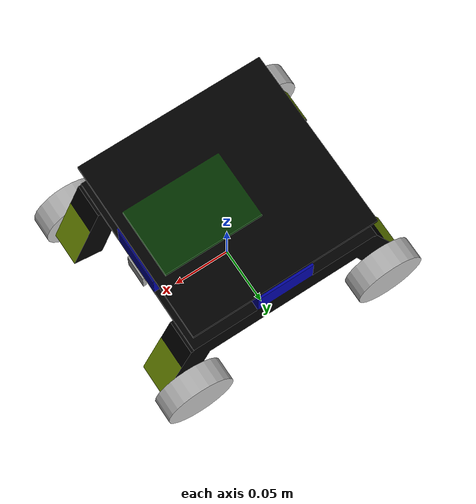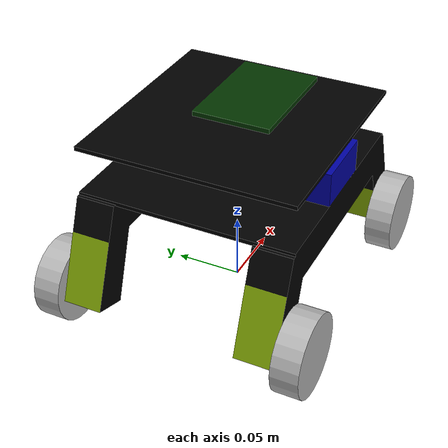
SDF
<?xml version='1.0'?>
<sdf version='1.4'>
  <model name="robob">
        <static>false</static>
   <link name="chassis">
        <pose>0 0 0.01 0 0 0</pose>
        <collision name="collision">
	  <geometry>
	    <mesh>
		  <uri>model://robob/robob_platform.dae</uri>
            </mesh>
          </geometry>
        </collision>
        <visual name="visual">
            <geometry>
                <mesh>
		  <uri>model://robob/robob_platform.dae</uri>
                </mesh>
            </geometry>
        </visual>
    </link>

    <link name="left_front_wheel">
        <pose>0.09 0.09 0.03 0 1.5707 1.5707</pose>
        <collision name="collision">
          <geometry>
            <cylinder>
              <radius>.03</radius>
              <length>.02</length>
            </cylinder>
          </geometry>
        </collision>
        <visual name="visual">
          <geometry>
            <cylinder>
              <radius>.03</radius>
              <length>.02</length>
            </cylinder>
          </geometry>
        </visual>
      </link>

   <link name="right_front_wheel">
        <pose>0.09 -0.09 0.03 0 1.5707 1.5707</pose>
        <collision name="collision">
          <geometry>
            <cylinder>
              <radius>.03</radius>
              <length>.02</length>
            </cylinder>
          </geometry>
        </collision>
        <visual name="visual">
          <geometry>
            <cylinder>
              <radius>.03</radius>
              <length>.02</length>
            </cylinder>
          </geometry>
        </visual>
      </link>

   <link name="right_back_wheel">
        <pose>-0.09 -0.09 0.03 0 1.5707 1.5707</pose>
        <collision name="collision">
          <geometry>
            <cylinder>
              <radius>.03</radius>
              <length>.02</length>
            </cylinder>
          </geometry>
        </collision>
        <visual name="visual">
          <geometry>
            <cylinder>
              <radius>.03</radius>
              <length>.02</length>
            </cylinder>
          </geometry>
        </visual>
      </link>

    <link name="left_back_wheel">
        <pose>-0.09 0.09 0.03 0 1.5707 1.5707</pose>
        <collision name="collision">
          <geometry>
            <cylinder>
              <radius>.03</radius>
              <length>.02</length>
            </cylinder>
          </geometry>
        </collision>
        <visual name="visual">
          <geometry>
            <cylinder>
              <radius>.03</radius>
              <length>.02</length>
            </cylinder>
          </geometry>
        </visual>
      </link>

    <joint name="leftbackwheel_joint" type="revolute">
      <parent>chassis</parent>
      <child>left_back_wheel</child>
      <pose>0 0 0 0 0 0</pose>
      <axis>
        <xyz>0 1 0</xyz>
      </axis>
    </joint>

    <joint name="rightbackwheel_joint" type="revolute">
      <parent>chassis</parent>
      <child>right_back_wheel</child>
      <pose>0 0 0 0 0 0</pose>
      <axis>
        <xyz>0 1 0</xyz>
      </axis>
    </joint>

    <joint name="leftfrontwheel_joint" type="revolute">
      <parent>chassis</parent>
      <child>left_front_wheel</child>
      <pose>0 0 0 0 0 0</pose>
      <axis>
        <xyz>0 1 0</xyz>
      </axis>
    </joint>

    <joint name="rightfrontwheel_joint" type="revolute">
      <parent>chassis</parent>
      <child>right_front_wheel</child>
      <pose>0 0 0 0 0 0</pose>
      <axis>
        <xyz>0 1 0</xyz>
      </axis>
    </joint>

<plugin name="differential_drive_controller" filename="libgazebo_ros_diff_drive.so">
 <alwaysOn>true</alwaysOn>
 <updateRate>20</updateRate>
 <leftJoint>leftfrontwheel_joint</leftJoint>
 <rightJoint>rightfrontwheel_joint</rightJoint>
 <wheelSeparation>0.16</wheelSeparation>
 <wheelDiameter>0.025</wheelDiameter>
 <torque>20</torque>
 <commandTopic>cmd_vel</commandTopic>
 <odometryTopic>odom</odometryTopic>
 <odometryFrame>odom</odometryFrame>
 <robotBaseFrame>chassis</robotBaseFrame>
 </plugin>

    <plugin filename="libmodel_diff_drive.so" name="model_diff_drive_plugin">
      <leftfrontwheel_joint>leftfrontwheel_joint</leftfrontwheel_joint>
      <rightfrontwheel_joint>rightfrontwheel_joint</rightfrontwheel_joint>
    </plugin>

  </model>
</sdf>
